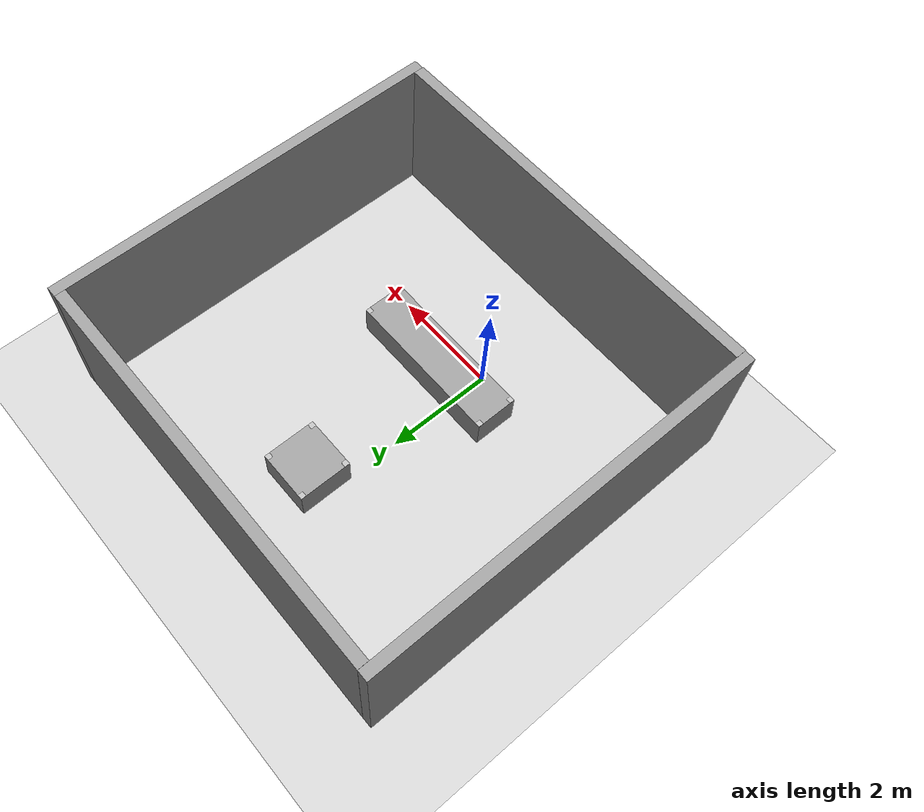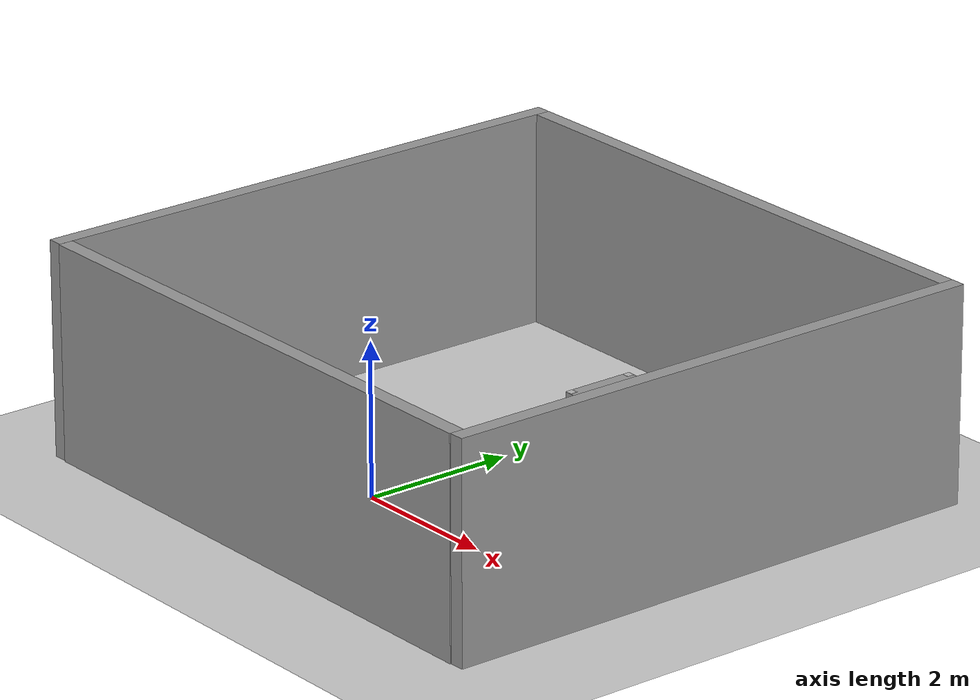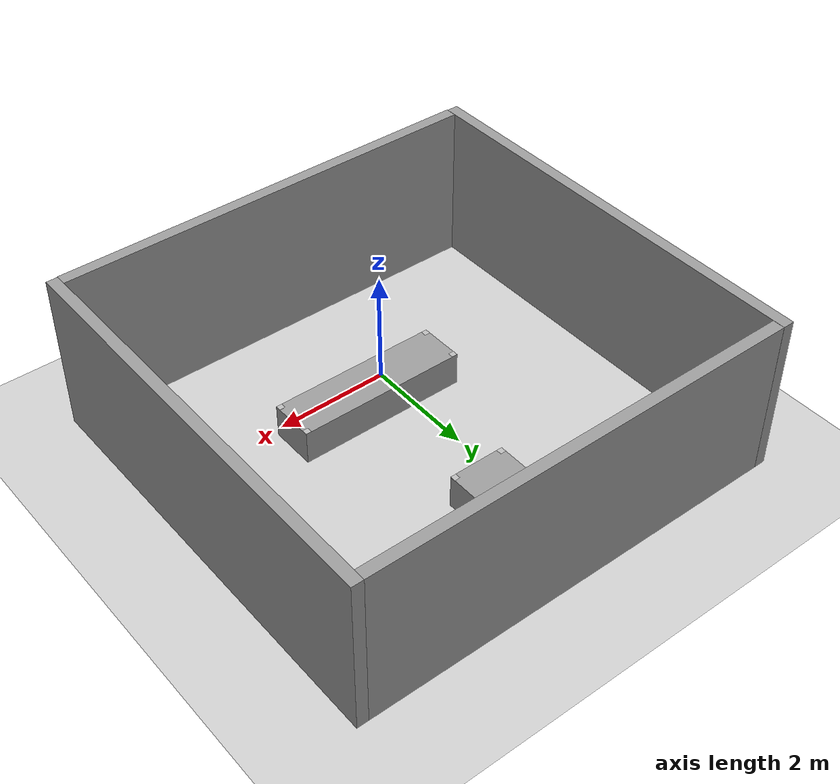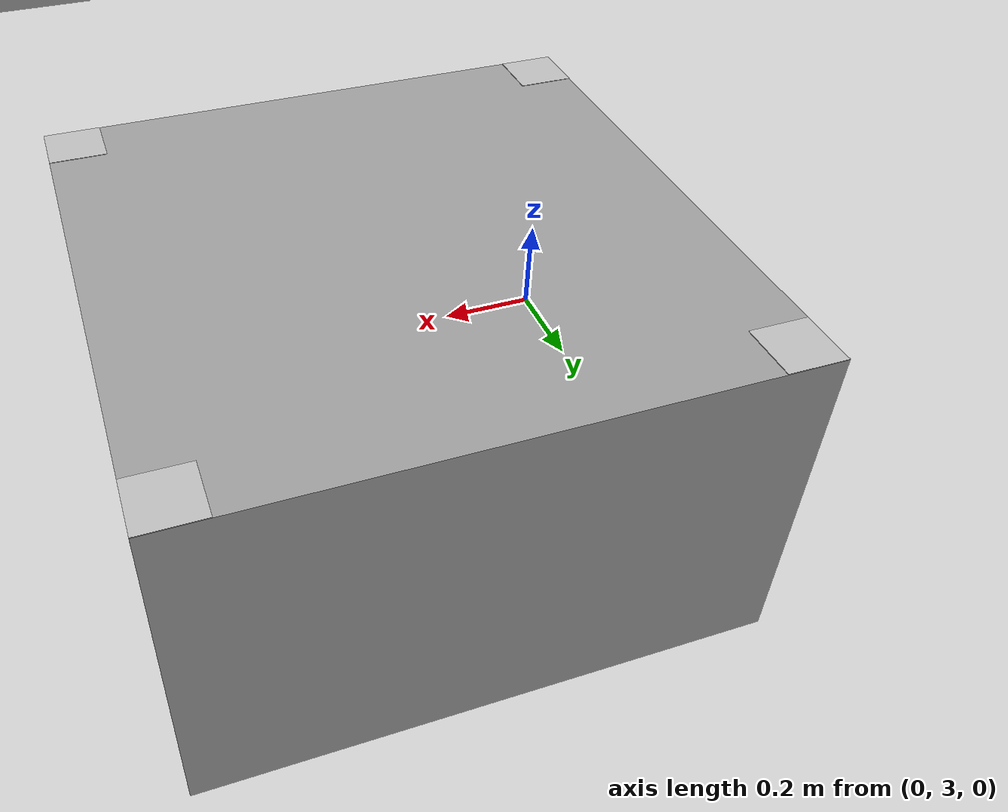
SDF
<sdf version="1.7">
 <world name="default">
  <light name="sun" type="directional">
   <pose>0 0 10 0 -0 0</pose>
   <diffuse>0.8 0.8 0.8 1</diffuse>
   <specular>0.2 0.2 0.2 1</specular>
   <attenuation>
    <range>1000</range>
    <constant>0.9</constant>
    <linear>0.01</linear>
    <quadratic>0.001</quadratic>
   </attenuation>
   <direction>-0.5 0.1 -0.9</direction>
   <spot><inner_angle>0</inner_angle><outer_angle>0</outer_angle><falloff>0</falloff></spot>
  </light>
  <model name="ground_plane">
   <static>1</static>
   <link name="link">
    <collision name="collision">
     <geometry><plane><normal>0 0 1</normal><size>100 100</size></plane></geometry>
     <surface><friction><ode><mu>100</mu><mu2>50</mu2></ode></friction></surface>
    </collision>
    <visual name="visual">
     <cast_shadows>0</cast_shadows>
     <geometry><plane><normal>0 0 1</normal><size>100 100</size></plane></geometry>
     <material>
      <script><uri>file://media/materials/scripts/gazebo.material</uri><name>Gazebo/Grey</name></script>
     </material>
    </visual>
   </link>
  </model>
  <gravity>0 0 -9.8</gravity>
  <magnetic_field>6e-06 2.3e-05 -4.2e-05</magnetic_field>
  <atmosphere type="adiabatic"/>
  <physics type="ode">
   <max_step_size>0.001</max_step_size>
   <real_time_factor>1</real_time_factor>
   <real_time_update_rate>1000</real_time_update_rate>
  </physics>
  <scene><ambient>0.4 0.4 0.4 1</ambient><background>0.7 0.7 0.7 1</background><shadows>1</shadows></scene>
  <spherical_coordinates>
   <surface_model>EARTH_WGS84</surface_model>
   <latitude_deg>0</latitude_deg>
   <longitude_deg>0</longitude_deg>
   <elevation>0</elevation>
   <heading_deg>0</heading_deg>
  </spherical_coordinates>
  <model name="Apriltag36_11_00000">
   <link name="main">
    <visual name="main_Visual">
     <geometry><box><size>0.1 0.1 0.01</size></box></geometry>
     <material>
      <script>
       <uri>model://Apriltag36_11_00000/materials/scripts</uri>
       <uri>model://Apriltag36_11_00000/materials/textures</uri>
       <name>Apriltag36_11_00000</name>
      </script>
     </material>
    </visual>
   </link>
   <static>1</static>
   <pose>2.08 0.153 0.596 0 -0 0</pose>
  </model>
  <model name="Apriltag36_11_00001">
   <link name="main">
    <visual name="main_Visual">
     <geometry><box><size>0.1 0.1 0.01</size></box></geometry>
     <material>
      <script>
       <uri>model://Apriltag36_11_00001/materials/scripts</uri>
       <uri>model://Apriltag36_11_00001/materials/textures</uri>
       <name>Apriltag36_11_00001</name>
      </script>
     </material>
    </visual>
   </link>
   <static>1</static>
   <pose>-0.82 0.153 0.596 0 -0 0</pose>
  </model>
  <model name="Apriltag36_11_00002">
   <link name="main">
    <visual name="main_Visual">
     <geometry><box><size>0.1 0.1 0.01</size></box></geometry>
     <material>
      <script>
       <uri>model://Apriltag36_11_00002/materials/scripts</uri>
       <uri>model://Apriltag36_11_00002/materials/textures</uri>
       <name>Apriltag36_11_00002</name>
      </script>
     </material>
    </visual>
   </link>
   <static>1</static>
   <pose>-0.82 0.853 0.596 0 -0 0</pose>
  </model>
  <model name="Apriltag36_11_00003">
   <link name="main">
    <visual name="main_Visual">
     <geometry><box><size>0.1 0.1 0.01</size></box></geometry>
     <material>
      <script>
       <uri>model://Apriltag36_11_00003/materials/scripts</uri>
       <uri>model://Apriltag36_11_00003/materials/textures</uri>
       <name>Apriltag36_11_00003</name>
      </script>
     </material>
    </visual>
   </link>
   <static>1</static>
   <pose>2.08 0.853 0.596 0 -0 0</pose>
  </model>
  <model name="bench">
   <link name="link_3">
    <inertial>
     <mass>1</mass>
     <inertia>
      <ixx>0.166667</ixx>
      <ixy>0</ixy>
      <ixz>0</ixz>
      <iyy>0.166667</iyy>
      <iyz>0</iyz>
      <izz>0.166667</izz>
     </inertia>
     <pose>0 0 -2 0 -0 0</pose>
    </inertial>
    <pose>0.179223 0.952342 0 0 -0 0</pose>
    <visual name="visual">
     <pose>0 0 -0.2 0 -0 0</pose>
     <geometry><box><size>3 0.8 0.6</size></box></geometry>
     <material>
      <lighting>1</lighting>
      <script><uri>file://media/materials/scripts/gazebo.material</uri><name>Gazebo/Grey</name></script>
      <shader type="pixel"><normal_map>__default__</normal_map></shader>
      <ambient>0.3 0.3 0.3 1</ambient>
      <diffuse>0.7 0.7 0.7 1</diffuse>
      <specular>0.01 0.01 0.01 1</specular>
      <emissive>0 0 0 1</emissive>
     </material>
    </visual>
    <collision name="collision">
     <geometry><box><size>1 1 1</size></box></geometry>
     <surface>
      <friction>
       <ode><mu>1</mu><mu2>1</mu2><fdir1>0 0 0</fdir1><slip1>0</slip1><slip2>0</slip2></ode>
       <torsional>
        <coefficient>1</coefficient>
        <patch_radius>0</patch_radius>
        <surface_radius>0</surface_radius>
        <use_patch_radius>1</use_patch_radius>
        <ode><slip>0</slip></ode>
       </torsional>
      </friction>
      <bounce><restitution_coefficient>0</restitution_coefficient><threshold>1e+06</threshold></bounce>
      <contact>
       <collide_without_contact>0</collide_without_contact>
       <collide_without_contact_bitmask>1</collide_without_contact_bitmask>
       <collide_bitmask>1</collide_bitmask>
       <ode>
        <soft_cfm>0</soft_cfm>
        <soft_erp>0.2</soft_erp>
        <kp>1e+13</kp>
        <kd>1</kd>
        <max_vel>0.01</max_vel>
        <min_depth>0</min_depth>
       </ode>
       <bullet>
        <split_impulse>1</split_impulse>
        <split_impulse_penetration_threshold>-0.01</split_impulse_penetration_threshold>
        <soft_cfm>0</soft_cfm>
        <soft_erp>0.2</soft_erp>
        <kp>1e+13</kp>
        <kd>1</kd>
       </bullet>
      </contact>
     </surface>
    </collision>
   </link>
   <static>0</static>
   <pose>0.451366 -0.449286 0.5 0 -0 0</pose>
  </model>
  <model name="tableSquare">
   <link name="link">
    <inertial>
     <mass>1</mass>
     <inertia>
      <ixx>0.166667</ixx>
      <ixy>0</ixy>
      <ixz>0</ixz>
      <iyy>0.166667</iyy>
      <iyz>0</iyz>
      <izz>0.166667</izz>
     </inertia>
    </inertial>
    <visual name="visual">
     <geometry><box><size>1 1 0.6</size></box></geometry>
     <material>
      <script><name>Gazebo/Grey</name><uri>file://media/materials/scripts/gazebo.material</uri></script>
      <shader type="pixel"><normal_map>__default__</normal_map></shader>
      <ambient>0.3 0.3 0.3 1</ambient>
      <diffuse>0.7 0.7 0.7 1</diffuse>
      <specular>0.01 0.01 0.01 1</specular>
      <emissive>0 0 0 1</emissive>
     </material>
     <pose>0 0 -0.2 0 -0 0</pose>
    </visual>
    <collision name="collision">
     <geometry><box><size>1 1 1</size></box></geometry>
     <surface>
      <friction>
       <ode><mu>1</mu><mu2>1</mu2><fdir1>0 0 0</fdir1><slip1>0</slip1><slip2>0</slip2></ode>
       <torsional>
        <coefficient>1</coefficient>
        <patch_radius>0</patch_radius>
        <surface_radius>0</surface_radius>
        <use_patch_radius>1</use_patch_radius>
        <ode><slip>0</slip></ode>
       </torsional>
      </friction>
      <bounce><restitution_coefficient>0</restitution_coefficient><threshold>1e+06</threshold></bounce>
      <contact>
       <collide_without_contact>0</collide_without_contact>
       <collide_without_contact_bitmask>1</collide_without_contact_bitmask>
       <collide_bitmask>1</collide_bitmask>
       <ode>
        <soft_cfm>0</soft_cfm>
        <soft_erp>0.2</soft_erp>
        <kp>1e+13</kp>
        <kd>1</kd>
        <max_vel>0.01</max_vel>
        <min_depth>0</min_depth>
       </ode>
       <bullet>
        <split_impulse>1</split_impulse>
        <split_impulse_penetration_threshold>-0.01</split_impulse_penetration_threshold>
        <soft_cfm>0</soft_cfm>
        <soft_erp>0.2</soft_erp>
        <kp>1e+13</kp>
        <kd>1</kd>
       </bullet>
      </contact>
     </surface>
    </collision>
   </link>
   <static>0</static>
   <pose>0.491957 3.47626 0.5 0 -0 0</pose>
  </model>
  <model name="Apriltag36_11_00004">
   <link name="main">
    <visual name="main_Visual">
     <geometry><box><size>0.1 0.1 0.01</size></box></geometry>
     <material>
      <script>
       <uri>model://Apriltag36_11_00004/materials/scripts</uri>
       <uri>model://Apriltag36_11_00004/materials/textures</uri>
       <name>Apriltag36_11_00004</name>
      </script>
     </material>
    </visual>
   </link>
   <static>1</static>
   <pose>0.042 3.027 0.596 0 -0 0</pose>
  </model>
  <model name="Apriltag36_11_00005">
   <link name="main">
    <visual name="main_Visual">
     <geometry><box><size>0.1 0.1 0.01</size></box></geometry>
     <material>
      <script>
       <uri>model://Apriltag36_11_00005/materials/scripts</uri>
       <uri>model://Apriltag36_11_00005/materials/textures</uri>
       <name>Apriltag36_11_00005</name>
      </script>
     </material>
    </visual>
   </link>
   <static>1</static>
   <pose>0.042 3.926 0.596 0 -0 0</pose>
  </model>
  <model name="Apriltag36_11_00006">
   <link name="main">
    <visual name="main_Visual">
     <geometry><box><size>0.1 0.1 0.01</size></box></geometry>
     <material>
      <script>
       <uri>model://Apriltag36_11_00006/materials/scripts</uri>
       <uri>model://Apriltag36_11_00006/materials/textures</uri>
       <name>Apriltag36_11_00006</name>
      </script>
     </material>
    </visual>
   </link>
   <static>1</static>
   <pose>0.942 3.926 0.596 0 -0 0</pose>
  </model>
  <model name="Apriltag36_11_00007">
   <link name="main">
    <visual name="main_Visual">
     <geometry><box><size>0.1 0.1 0.01</size></box></geometry>
     <material>
      <script>
       <uri>model://Apriltag36_11_00007/materials/scripts</uri>
       <uri>model://Apriltag36_11_00007/materials/textures</uri>
       <name>Apriltag36_11_00007</name>
      </script>
     </material>
    </visual>
   </link>
   <static>1</static>
   <pose>0.942 3.027 0.596 0 -0 0</pose>
  </model>
  <model name="grey_wall">
   <static>1</static>
   <link name="link">
    <pose>0 0 1.4 0 -0 0</pose>
    <collision name="collision"><geometry><box><size>7.5 0.2 2.8</size></box></geometry></collision>
    <visual name="visual">
     <cast_shadows>0</cast_shadows>
     <geometry><box><size>7.5 0.2 2.8</size></box></geometry>
     <material>
      <script>
       <uri>model://grey_wall/materials/scripts</uri>
       <uri>model://grey_wall/materials/textures</uri>
       <name>vrc/grey_wall</name>
      </script>
     </material>
    </visual>
   </link>
   <pose>0.551738 -2.11317 0 0 -0 0</pose>
  </model>
  <model name="grey_wall_1">
   <static>1</static>
   <link name="link">
    <pose>0 0 1.4 0 -0 0</pose>
    <collision name="collision"><geometry><box><size>7.5 0.2 2.8</size></box></geometry></collision>
    <visual name="visual">
     <cast_shadows>0</cast_shadows>
     <geometry><box><size>7.5 0.2 2.8</size></box></geometry>
     <material>
      <script>
       <uri>model://grey_wall/materials/scripts</uri>
       <uri>model://grey_wall/materials/textures</uri>
       <name>vrc/grey_wall</name>
      </script>
     </material>
    </visual>
   </link>
   <pose>4.4 1.55 0 0 -0 1.5708</pose>
  </model>
  <model name="grey_wall_0">
   <static>1</static>
   <link name="link">
    <pose>0 0 1.4 0 -0 0</pose>
    <collision name="collision"><geometry><box><size>7.5 0.2 2.8</size></box></geometry></collision>
    <visual name="visual">
     <cast_shadows>0</cast_shadows>
     <geometry><box><size>7.5 0.2 2.8</size></box></geometry>
     <material>
      <script>
       <uri>model://grey_wall/materials/scripts</uri>
       <uri>model://grey_wall/materials/textures</uri>
       <name>vrc/grey_wall</name>
      </script>
     </material>
    </visual>
   </link>
   <pose>0.5517 5.2 0 0 -0 0</pose>
  </model>
  <model name="grey_wall_2">
   <static>1</static>
   <link name="link">
    <pose>0 0 1.4 0 -0 0</pose>
    <collision name="collision"><geometry><box><size>7.5 0.2 2.8</size></box></geometry></collision>
    <visual name="visual">
     <cast_shadows>0</cast_shadows>
     <geometry><box><size>7.5 0.2 2.8</size></box></geometry>
     <material>
      <script>
       <uri>model://grey_wall/materials/scripts</uri>
       <uri>model://grey_wall/materials/textures</uri>
       <name>vrc/grey_wall</name>
      </script>
     </material>
    </visual>
   </link>
   <pose>-3.3 1.55 0 0 -0 1.5708</pose>
  </model>
 </world>
</sdf>
